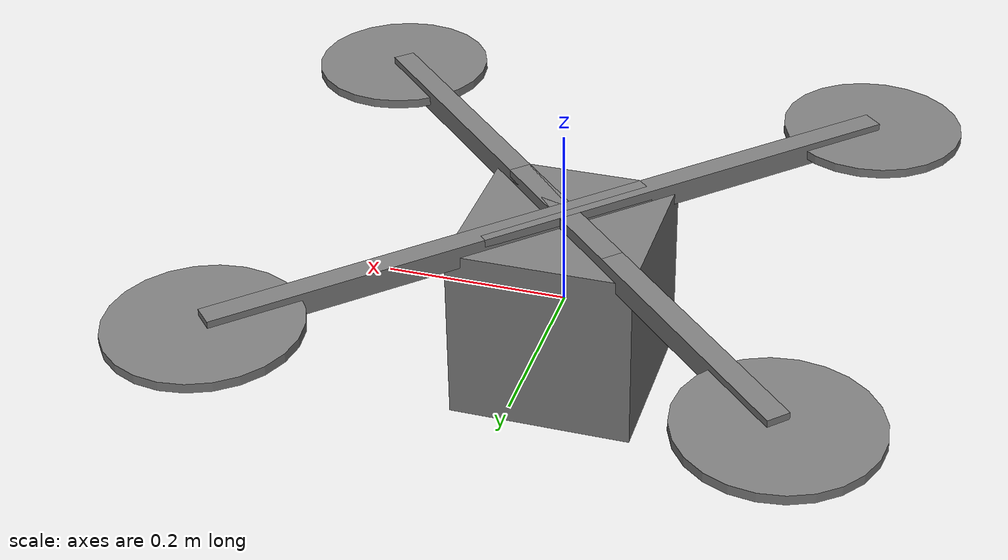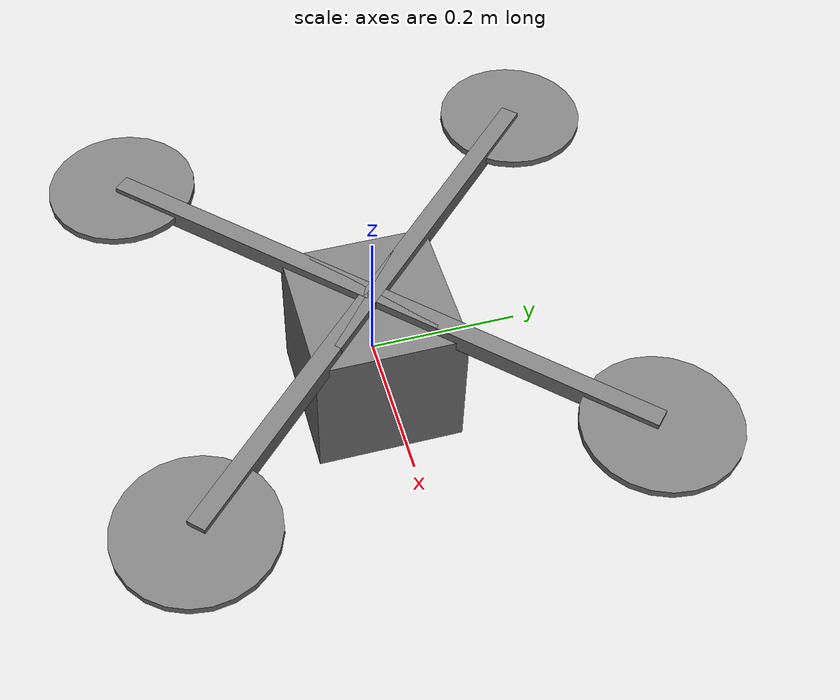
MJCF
<mujoco model="Simplified UAV">
    <compiler inertiafromgeom="true"/>
    <option gravity="0 0 -9.81" iterations="50" integrator="Euler" density="1.225" viscosity="1.8e-5"/>

    <default>
        <joint damping="0.01"/>
        <geom friction="1 0.5 0.5" density="1000" margin="0.01"/>
        <motor ctrlrange="0.0 10.0"/>
    </default>

    <worldbody>
        <body name="drone" pos="0 0 0">
            <freejoint/>
            <site name="drone" pos="0 0 0" size="0.05" rgba="0 1 0 1"/>
            <geom name="drone" type="box" size="0.1 0.1 0.1" mass="1"/>

            <body name="arms" pos="0 0 0.1" euler="0 0 45">
                <!-- Arm 1 -->
                <body name="arm1" pos="0.15 0 0">
                    <geom type="box" size="0.25 0.0125 0.0125" mass="0.1"/>
                    <body name="prop1" pos="0.25 0 0">
                        <joint name="prop1_joint" type="hinge" axis="0 0 1"/>
                        <geom type="cylinder" size="0.1 0.005" mass="0.05"/>
                        <site name="prop1_thrust" pos="0 0 -0.025"/>
                    </body>
                </body>

                <!-- Arm 2 -->
                <body name="arm2" pos="-0.15 0 0">
                    <geom type="box" size="0.25 0.0125 0.0125" mass="0.1"/>
                    <body name="prop2" pos="-0.25 0 0">
                        <joint name="prop2_joint" type="hinge" axis="0 0 1"/>
                        <geom type="cylinder" size="0.1 0.005" mass="0.05"/>
                        <site name="prop2_thrust" pos="0 0 -0.025"/>
                    </body>
                </body>

                <!-- Arm 3 -->
                <body name="arm3" pos="0 0.15 0">
                    <geom type="box" size="0.25 0.0125 0.0125" mass="0.1" euler="0 0 90"/>
                    <body name="prop3" pos="0 0.25 0">
                        <joint name="prop3_joint" type="hinge" axis="0 0 1"/>
                        <geom type="cylinder" size="0.1 0.005" mass="0.05"/>
                        <site name="prop3_thrust" pos="0 0 -0.025"/>
                    </body>
                </body>

                <!-- Arm 4 -->
                <body name="arm4" pos="0 -0.15 0">
                    <geom type="box" size="0.25 0.0125 0.0125" mass="0.1" euler="0 0 90"/>
                    <body name="prop4" pos="0 -0.25 0">
                        <joint name="prop4_joint" type="hinge" axis="0 0 1"/>
                        <geom type="cylinder" size="0.1 0.005" mass="0.05"/>
                        <site name="prop4_thrust" pos="0 0 -0.025"/>
                    </body>
                </body>
            </body>

            <!-- Front Stereo Cameras -->
            <camera name="camera_left" pos="0.05 0.05 0" zaxis="0 0 -1" fovy="60"/>
            <camera name="camera_right" pos="0.05 -0.05 0" zaxis="0 0 -1" fovy="60"/>
        </body>
    </worldbody>

    <actuator>
        <motor name="motor1" site="prop1_thrust" gear="0 0 10 0 0 -1"/>
        <motor name="motor2" site="prop2_thrust" gear="0 0 10 0 0 -1"/>
        <motor name="motor3" site="prop3_thrust" gear="0 0 10 0 0 1"/>
        <motor name="motor4" site="prop4_thrust" gear="0 0 10 0 0 1"/>
    </actuator>

    <sensor>
        <accelerometer name="imu_accel" site="drone" noise="0.01"/>
        <gyro name="imu_gyro" site="drone" noise="0.005"/>
        <framequat name="imu_orientation" objtype="body" objname="drone"/>
    </sensor>
</mujoco>
